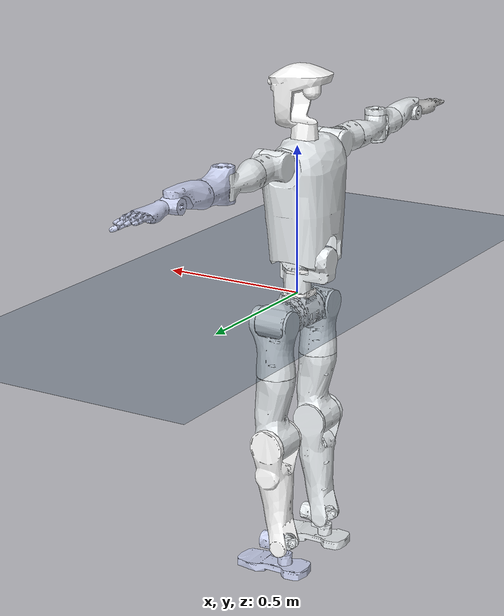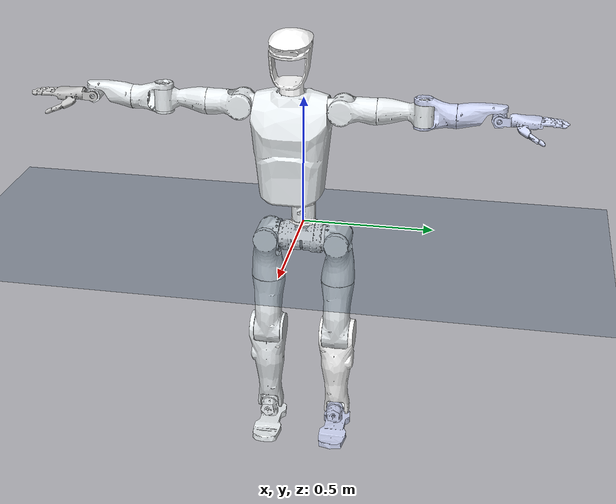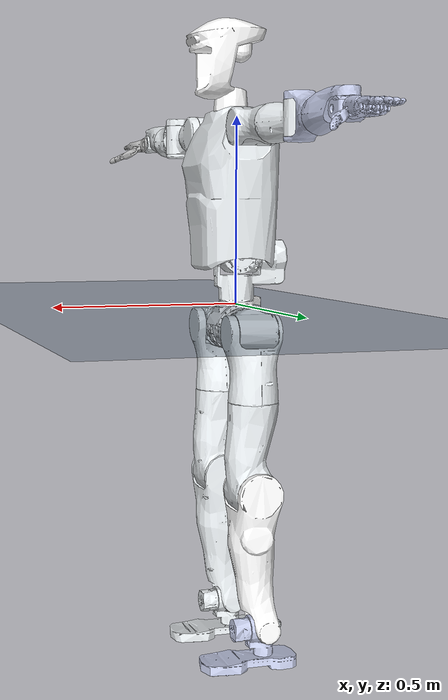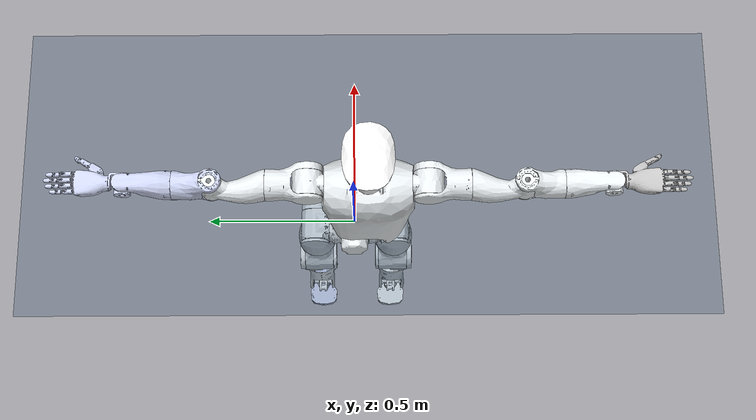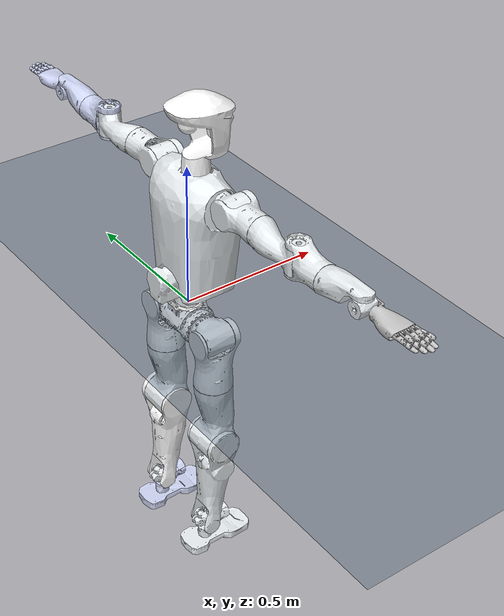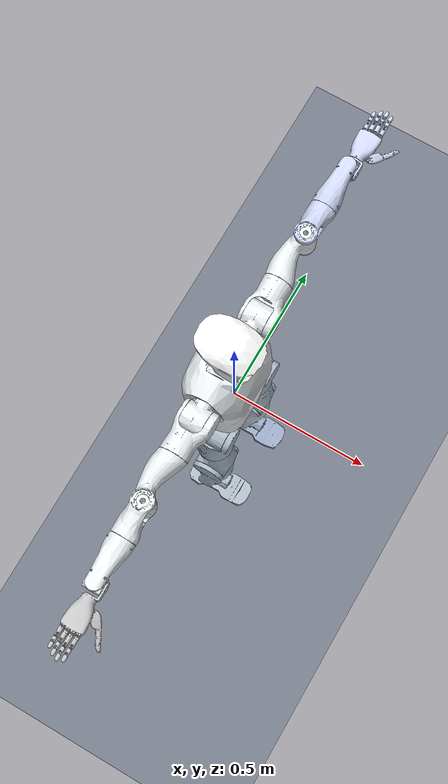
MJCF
<mujoco model="ti5robot">
  <compiler angle="radian" meshdir="./meshes/"/>
  <option timestep='0.002' iterations='50' solver='Newton' gravity='0 0 -9.81' integrator = 'RK4'/>

  <asset>
    <mesh name="BASE_S" file="BASE_S.STL"/>
    <mesh name="L_HIP_P_S" file="L_HIP_P_S.STL"/>
    <mesh name="L_HIP_R_S" file="L_HIP_R_S.STL"/>
    <mesh name="L_HIP_Y_S" file="L_HIP_Y_S.STL"/>
    <mesh name="L_KNEE_P_S" file="L_KNEE_P_S.STL"/>
    <mesh name="L_ANKLE_P_S" file="L_ANKLE_P_S.STL"/>
    <mesh name="L_ANKLE_R_S" file="L_ANKLE_R_S.STL"/>
    <mesh name="R_HIP_P_S" file="R_HIP_P_S.STL"/>
    <mesh name="R_HIP_R_S" file="R_HIP_R_S.STL"/>
    <mesh name="R_HIP_Y_S" file="R_HIP_Y_S.STL"/>
    <mesh name="R_KNEE_P_S" file="R_KNEE_P_S.STL"/>
    <mesh name="R_ANKLE_P_S" file="R_ANKLE_P_S.STL"/>
    <mesh name="R_ANKLE_R_S" file="R_ANKLE_R_S.STL"/>
    <mesh name="WAIST_Y_S" file="WAIST_Y_S.STL"/>
    <mesh name="WAIST_R_S" file="WAIST_R_S.STL"/>
    <mesh name="WAIST_P_S" file="WAIST_P_S.STL"/>
    <mesh name="L_SHOULDER_P_S" file="L_SHOULDER_P_S.STL"/>
    <mesh name="L_SHOULDER_R_S" file="L_SHOULDER_R_S.STL"/>
    <mesh name="L_SHOULDER_Y_S" file="L_SHOULDER_Y_S.STL"/>
    <mesh name="L_ELBOW_Y_S" file="L_ELBOW_Y_S.STL"/>
    <mesh name="L_WRIST_P_S" file="L_WRIST_P_S.STL"/>
    <mesh name="L_WRIST_Y_S" file="L_WRIST_Y_S.STL"/>
    <mesh name="L_WRIST_R_S" file="L_WRIST_R_S.STL"/>
    <mesh name="R_SHOULDER_P_S" file="R_SHOULDER_P_S.STL"/>
    <mesh name="R_SHOULDER_R_S" file="R_SHOULDER_R_S.STL"/>
    <mesh name="R_SHOULDER_Y_S" file="R_SHOULDER_Y_S.STL"/>
    <mesh name="R_ELBOW_Y_S" file="R_ELBOW_Y_S.STL"/>
    <mesh name="R_WRIST_P_S" file="R_WRIST_P_S.STL"/>
    <mesh name="R_WRIST_Y_S" file="R_WRIST_Y_S.STL"/>
    <mesh name="R_WRIST_R_S" file="R_WRIST_R_S.STL"/>
    <mesh name="NECK_Y_S" file="NECK_Y_S.STL"/>
  </asset>

  <default>
    <joint armature="0.1" damping="2" frictionloss="0.5"/>
  </default>

  <worldbody>
    <body name="base_link" pos="0 0 0" euler=" 0 0 0">
      <freejoint name="root"/>
      <inertial pos="-5.5e-05 1e-06 -0.047948" quat="1 0 0 0" mass="6.323164" diaginertia="0.0202645 0.0315849 0.0233534"/>
      <geom type="mesh" contype="0" conaffinity="0" group="1" density="0" rgba="1 1 1 1" mesh="BASE_S"/>
      <body name="L_HIP_P_S" pos="0 0.0945 -0.067">
        <inertial pos="0.012892 0.041367 1e-06" quat="0.627477 -0.000291411 -0.000475848 0.778635" mass="1.60224" diaginertia="0.00267399 0.00233509 0.00230796"/>
        <joint name="L_HIP_P" pos="0 0 0" axis="0 1 0" range="-1.2 0.3" actuatorfrcrange="-267 267"/>
        <geom type="mesh" contype="0" conaffinity="0" group="1" density="0" rgba="0.898039 0.917647 0.929412 1" mesh="L_HIP_P_S"/>
        <geom type="mesh" rgba="0.898039 0.917647 0.929412 1" mesh="L_HIP_P_S"/>
        <body name="L_HIP_R_S" pos="0.058 0.044 0">
          <inertial pos="-0.052494 0.001116 -0.135556" quat="0.718827 0.0662956 0.0901577 0.686123" mass="2.12318" diaginertia="0.00835541 0.00788314 0.00311014"/>
          <joint name="L_HIP_R" pos="0 0 0" axis="1 0 0" range="0 0.3" actuatorfrcrange="-63 63"/>
          <geom type="mesh" contype="0" conaffinity="0" group="1" density="0" rgba="0.898039 0.917647 0.929412 1" mesh="L_HIP_R_S"/>
          <geom type="mesh" rgba="0.898039 0.917647 0.929412 1" mesh="L_HIP_R_S"/>
          <body name="L_HIP_Y_S" pos="-0.058 0 -0.1972">
            <inertial pos="0.001701 0.007194 -0.198857" quat="0.661595 0.00419875 0.0230361 0.749496" mass="3.31319" diaginertia="0.0181625 0.0177362 0.00657469"/>
            <joint name="L_HIP_Y" pos="0 0 0" axis="0 0 -1" range="-0.3 0.3" actuatorfrcrange="-121 121"/>
            <geom type="mesh" contype="0" conaffinity="0" group="1" density="0" rgba="0.898039 0.917647 0.929412 1" mesh="L_HIP_Y_S"/>
            <geom type="mesh" rgba="0.898039 0.917647 0.929412 1" mesh="L_HIP_Y_S"/>
            <body name="L_KNEE_P_S" pos="0 0.057 -0.2228">
              <inertial pos="-0.003673 -0.046279 -0.131966" quat="0.996344 -0.0215571 0.0588606 -0.0580409" mass="2.87226" diaginertia="0.0309237 0.0291387 0.00644882"/>
              <joint name="L_KNEE_P" pos="0 0 0" axis="0 1 0" range="-0.2 1.2" actuatorfrcrange="-267 267"/>
              <geom type="mesh" contype="0" conaffinity="0" group="1" density="0" rgba="1 1 1 1" mesh="L_KNEE_P_S"/>
              <body name="L_ANKLE_P_S" pos="-0.032248 -0.058 -0.36859">
                <inertial pos="-0.006451 -0.006279 0.001685" quat="0.363576 0.67882 -0.304609 0.560562" mass="0.167704" diaginertia="0.000118849 8.01559e-05 7.10885e-05"/>
                <joint name="L_ANKLE_P" pos="0 0 0" axis="0 -1 0" range="-0.1 0.3" actuatorfrcrange="-63 63"/>
                <geom type="mesh" contype="0" conaffinity="0" group="1" density="0" rgba="0.898039 0.917647 0.929412 1" mesh="L_ANKLE_P_S"/>
                <geom type="mesh" rgba="0.898039 0.917647 0.929412 1" mesh="L_ANKLE_P_S"/>
                <body name="L_ANKLE_R_S" pos="0.023 0 0">
                  <inertial pos="0.019198 1e-06 -0.066833" quat="0.502366 0.497633 0.497632 0.502347" mass="2.58048" diaginertia="0.0148125 0.0131794 0.00501143"/>
                  <joint name="L_ANKLE_R" pos="0 0 0" axis="1 0 0" range="-0.2 0.2" actuatorfrcrange="-23 23"/>
                  <geom type="mesh" contype="0" conaffinity="0" group="1" density="0" rgba="0.792157 0.819608 0.933333 1" mesh="L_ANKLE_R_S"/>
                  <geom type="mesh" rgba="0.792157 0.819608 0.933333 1" mesh="L_ANKLE_R_S"/>
                </body>
              </body>
            </body>
          </body>
        </body>
      </body>

      <body name="R_HIP_P_S" pos="0 -0.0945 -0.067">
        <inertial pos="0.012246 -0.041162 1e-06" quat="0.77667 -0.00271576 -0.00217958 0.629898" mass="1.48677" diaginertia="0.00257663 0.00224167 0.00221078"/>
        <joint name="R_HIP_P" pos="0 0 0" axis="0 -1 0" range="-0.3 1.2" actuatorfrcrange="-267 267"/>
        <geom type="mesh" contype="0" conaffinity="0" group="1" density="0" rgba="0.898039 0.917647 0.929412 1" mesh="R_HIP_P_S"/>
        <geom type="mesh" rgba="0.898039 0.917647 0.929412 1" mesh="R_HIP_P_S"/>
        <body name="R_HIP_R_S" pos="0.058 -0.044 0">
          <inertial pos="-0.048002 -0.002026 -0.117145" quat="0.685206 0.0890741 0.0677358 0.719702" mass="1.16933" diaginertia="0.0067549 0.00628602 0.00252102"/>
          <joint name="R_HIP_R" pos="0 0 0" axis="-1 0 0" range="0.0 0.3" actuatorfrcrange="-63 63"/>
          <geom type="mesh" contype="0" conaffinity="0" group="1" density="0" rgba="0.898039 0.917647 0.929412 1" mesh="R_HIP_R_S"/>
          <geom type="mesh" rgba="0.898039 0.917647 0.929412 1" mesh="R_HIP_R_S"/>
          <body name="R_HIP_Y_S" pos="-0.058 0 -0.1972">
            <inertial pos="0.001876 -0.007356 -0.1964" quat="0.750285 0.0225833 0.00423983 0.660715" mass="3.00568" diaginertia="0.0174642 0.0170509 0.00608184"/>
            <joint name="R_HIP_Y" pos="0 0 0" axis="0 0 -1" range="-0.3 0.3" actuatorfrcrange="-121 121"/>
            <geom type="mesh" contype="0" conaffinity="0" group="1" density="0" rgba="0.898039 0.917647 0.929412 1" mesh="R_HIP_Y_S"/>
            <geom type="mesh" rgba="0.898039 0.917647 0.929412 1" mesh="R_HIP_Y_S"/>
            <body name="R_KNEE_P_S" pos="0 -0.057 -0.2228">
              <inertial pos="-0.001129 0.044916 -0.124637" quat="0.998194 0.0145088 0.0494387 0.0309004" mass="2.65342" diaginertia="0.0273573 0.025749 0.00621402"/>
              <joint name="R_KNEE_P" pos="0 0 0" axis="0 -1 0" range="-1.2 0.2" actuatorfrcrange="-267 267"/>
              <geom type="mesh" contype="0" conaffinity="0" group="1" density="0" rgba="0.898039 0.917647 0.929412 1" mesh="R_KNEE_P_S"/>
              <body name="R_ANKLE_P_S" pos="-0.032248 0.058 -0.36859">
                <inertial pos="-0.005285 0.0029 0.00138" quat="0.549092 0.54113 -0.453601 0.447127" mass="0.204699" diaginertia="0.000147897 0.000105132 7.78735e-05"/>
                <joint name="R_ANKLE_P" pos="0 0 0" axis="0 1 0" range="-0.3 0.1" actuatorfrcrange="-63 63"/>
                <geom type="mesh" contype="0" conaffinity="0" group="1" density="0" rgba="0.898039 0.917647 0.929412 1" mesh="R_ANKLE_P_S"/>
                <geom type="mesh" rgba="0.898039 0.917647 0.929412 1" mesh="R_ANKLE_P_S"/>
                <body name="R_ANKLE_R_S" pos="0.023 0 0">
                  <inertial pos="0.019038 -1e-06 -0.067145" quat="0.501909 0.498073 0.498073 0.50193" mass="2.57336" diaginertia="0.0147581 0.0131815 0.00495101"/>
                  <joint name="R_ANKLE_R" pos="0 0 0" axis="1 0 0" range="-0.2 0.2" actuatorfrcrange="-23 23"/>
                  <geom type="mesh" contype="0" conaffinity="0" group="1" density="0" rgba="0.898039 0.917647 0.929412 1" mesh="R_ANKLE_R_S"/>
                  <geom type="mesh" rgba="0.898039 0.917647 0.929412 1" mesh="R_ANKLE_R_S"/>
                </body>
              </body>
            </body>
          </body>
        </body>
      </body>

      <body name="WAIST_Y_S" pos="0 0 0">
        <inertial pos="-0.070117 0 0.109774" quat="0.32211 0.629462 0.6295 0.322107" mass="1.49971" diaginertia="0.00504279 0.00450544 0.0020536"/>
        <joint name="WAIST_Y" pos="0 0 0" axis="0 0 1" range="-3.14 3.14" actuatorfrcrange="-63 63"/>
        <geom type="mesh" contype="0" conaffinity="0" group="1" density="0" rgba="0.898039 0.917647 0.929412 1" mesh="WAIST_Y_S"/>
        <body name="WAIST_R_S" pos="-0.0495 0 0.127">
          <inertial pos="0.047638 0.006061 0" quat="0.480002 0.48295 0.516898 0.51882" mass="1.36489" diaginertia="0.00158718 0.00145367 0.00138281"/>
          <joint name="WAIST_R" pos="0 0 0" axis="1 0 0" range="-0.61 0.61" actuatorfrcrange="-63 63"/>
          <geom type="mesh" contype="0" conaffinity="0" group="1" density="0" rgba="0.898039 0.917647 0.929412 1" mesh="WAIST_R_S"/>
          <geom type="mesh" rgba="0.898039 0.917647 0.929412 1" mesh="WAIST_R_S"/>
          <body name="WAIST_P_S" pos="0.0495 0 0">
            <inertial pos="0.00211 -0.04656 0.245727" quat="0.999822 0.000676921 -0.0188413 -0.000726282" mass="11.0809" diaginertia="0.119572 0.0853823 0.0653947"/>
            <joint name="WAIST_P" pos="0 0 0" axis="0 1 0" range="-0.244 0.523" actuatorfrcrange="-63 63"/>
            <geom type="mesh" contype="0" conaffinity="0" group="1" density="0" rgba="0.898039 0.917647 0.929412 1" mesh="WAIST_P_S"/>
            <geom type="mesh" rgba="0.898039 0.917647 0.929412 1" mesh="WAIST_P_S"/>
            <body name="L_SHOULDER_P_S" pos="0.0005 0.0775 0.336">
              <inertial pos="0.011526 0.059678 0" quat="0.556289 0.436694 -0.556142 0.436517" mass="1.44488" diaginertia="0.001979 0.00197202 0.00157479"/>
              <joint name="L_SHOULDER_P" pos="0 0 0" axis="0 1 0" range="-3.14 3.14" actuatorfrcrange="-63 63"/>
              <geom type="mesh" contype="0" conaffinity="0" group="1" density="0" rgba="0.898039 0.917647 0.929412 1" mesh="L_SHOULDER_P_S"/>
              <geom type="mesh" rgba="0.898039 0.917647 0.929412 1" mesh="L_SHOULDER_P_S"/>
              <body name="L_SHOULDER_R_S" pos="0.054 0.066 0">
                <inertial pos="-0.050103 0.088587 0.000207" quat="0.445216 0.559564 -0.426623 0.553772" mass="1.01445" diaginertia="0.0026334 0.00242865 0.00105219"/>
                <joint name="L_SHOULDER_R" pos="0 0 0" axis="1 0 0" range="-1.57 1.57" actuatorfrcrange="-63 63"/>
                <geom type="mesh" contype="0" conaffinity="0" group="1" density="0" rgba="0.898039 0.917647 0.929412 1" mesh="L_SHOULDER_R_S"/>
                <geom type="mesh" rgba="0.898039 0.917647 0.929412 1" mesh="L_SHOULDER_R_S"/>
                <body name="L_SHOULDER_Y_S" pos="-0.054 0.1395 0">
                  <inertial pos="-0.002242 0.128183 0.013931" quat="0.688256 0.724315 0.00981676 -0.0396925" mass="1.09809" diaginertia="0.00436308 0.00416629 0.00101084"/>
                  <joint name="L_SHOULDER_Y" pos="0 0 0" axis="0 1 0" range="-3.14 3.14" actuatorfrcrange="-42 42"/>
                  <geom type="mesh" contype="0" conaffinity="0" group="1" density="0" rgba="0.898039 0.917647 0.929412 1" mesh="L_SHOULDER_Y_S"/>
                  <geom type="mesh" rgba="0.898039 0.917647 0.929412 1" mesh="L_SHOULDER_Y_S"/>
                  <body name="L_ELBOW_Y_S" pos="0 0.1605 0.051">
                    <inertial pos="-0.000772 0.079344 -0.047655" quat="0.779309 0.625873 -0.000692162 -0.0309908" mass="0.71509" diaginertia="0.00153346 0.001364 0.000810757"/>
                    <joint name="L_ELBOW_Y" pos="0 0 0" axis="0 0 1" range="-2.4 0.87" actuatorfrcrange="-42 42"/>
                    <geom type="mesh" contype="0" conaffinity="0" group="1" density="0" rgba="0.792157 0.819608 0.933333 1" mesh="L_ELBOW_Y_S"/>
                    <geom type="mesh" rgba="0.792157 0.819608 0.933333 1" mesh="L_ELBOW_Y_S"/>
                    <body name="L_WRIST_P_S" pos="0 0.1281 -0.051">
                      <inertial pos="-2.3e-05 0.049845 0.012821" quat="0.543246 0.839509 0.00940244 -0.00445009" mass="0.668794" diaginertia="0.00147551 0.0014373 0.00049438"/>
                      <joint name="L_WRIST_P" pos="0 0 0" axis="0 1 0" range="-3.14 3.14" actuatorfrcrange="-23 23"/>
                      <geom type="mesh" contype="0" conaffinity="0" group="1" density="0" rgba="0.792157 0.819608 0.933333 1" mesh="L_WRIST_P_S"/>
                      <geom type="mesh" rgba="0.792157 0.819608 0.933333 1" mesh="L_WRIST_P_S"/>
                      <body name="L_WRIST_Y_S" pos="9.0984e-05 0.14468 0.0425">
                        <inertial pos="-0.001864 0.000224 -0.040571" quat="0.505833 0.494425 0.494445 0.505175" mass="0.323944" diaginertia="0.000159343 0.000149794 0.000125793"/>
                        <joint name="L_WRIST_Y" pos="0 0 0" axis="0 0 1" range="-0.69 0.69" actuatorfrcrange="-8.3 8.3"/>
                        <geom type="mesh" contype="0" conaffinity="0" group="1" density="0" rgba="0.792157 0.819608 0.933333 1" mesh="L_WRIST_Y_S"/>
                        <geom type="mesh" rgba="0.792157 0.819608 0.933333 1" mesh="L_WRIST_Y_S"/>
                        <body name="L_WRIST_R_S" pos="0.030909 0.00022307 -0.0415">
                          <inertial pos="-0.011864 0.124644 -0.003841" quat="0.551322 0.61054 -0.374157 0.428126" mass="0.51894" diaginertia="0.00159414 0.00115561 0.000584714"/>
                          <joint name="L_WRIST_R" pos="0 0 0" axis="1 0 0" range="-2.35 0.348" actuatorfrcrange="-8.3 8.3"/>
                          <geom type="mesh" contype="0" conaffinity="0" group="1" density="0" rgba="0.792157 0.819608 0.933333 1" mesh="L_WRIST_R_S"/>
                          <geom type="mesh" rgba="0.792157 0.819608 0.933333 1" mesh="L_WRIST_R_S"/>
                        </body>
                      </body>
                    </body>
                  </body>
                </body>
              </body>
            </body>
            <body name="R_SHOULDER_P_S" pos="0.0005 -0.1705 0.336">
              <inertial pos="0.010619 -0.059179 0" quat="0.435974 0.556708 -0.435975 0.556713" mass="1.3392" diaginertia="0.00191588 0.00187624 0.00151805"/>
              <joint name="R_SHOULDER_P" pos="0 0 0" axis="0 1 0" range="-3.14 3.14" actuatorfrcrange="-63 63"/>
              <geom type="mesh" contype="0" conaffinity="0" group="1" density="0" rgba="0.898039 0.917647 0.929412 1" mesh="R_SHOULDER_P_S"/>
              <geom type="mesh" rgba="0.898039 0.917647 0.929412 1" mesh="R_SHOULDER_P_S"/>
              <body name="R_SHOULDER_R_S" pos="0.054 -0.066 0">
                <inertial pos="-0.046824 -0.072798 0.000381" quat="0.567151 0.436483 -0.560804 0.416319" mass="0.550943" diaginertia="0.00209653 0.00189866 0.00091488"/>
                <joint name="R_SHOULDER_R" pos="0 0 0" axis="1 0 0" range="-1.57 1.57" actuatorfrcrange="-63 63"/>
                <geom type="mesh" contype="0" conaffinity="0" group="1" density="0" rgba="0.898039 0.917647 0.929412 1" mesh="R_SHOULDER_R_S"/>
                <geom type="mesh" rgba="0.898039 0.917647 0.929412 1" mesh="R_SHOULDER_R_S"/>
                <body name="R_SHOULDER_Y_S" pos="-0.054 -0.1395 0">
                  <inertial pos="-0.003882 -0.10458 0.010336" quat="0.710567 0.700887 0.0543828 -0.0298987" mass="0.634542" diaginertia="0.00327904 0.00318608 0.000774573"/>
                  <joint name="R_SHOULDER_Y" pos="0 0 0" axis="0 1 0" range="-3.14 3.14" actuatorfrcrange="-42 42"/>
                  <geom type="mesh" contype="0" conaffinity="0" group="1" density="0" rgba="0.898039 0.917647 0.929412 1" mesh="R_SHOULDER_Y_S"/>
                  <geom type="mesh" rgba="0.898039 0.917647 0.929412 1" mesh="R_SHOULDER_Y_S"/>
                  <body name="R_ELBOW_Y_S" pos="0 -0.1605 0.051">
                    <inertial pos="-0.000784 -0.079077 -0.047592" quat="0.6257 0.779452 0.0308704 0.00074668" mass="0.702473" diaginertia="0.00152383 0.00135435 0.000804955"/>
                    <joint name="R_ELBOW_Y" pos="0 0 0" axis="0 0 1" range="-0.87 2.4" actuatorfrcrange="-42 42"/>
                    <geom type="mesh" contype="0" conaffinity="0" group="1" density="0" rgba="0.898039 0.917647 0.929412 1" mesh="R_ELBOW_Y_S"/>
                    <geom type="mesh" rgba="0.898039 0.917647 0.929412 1" mesh="R_ELBOW_Y_S"/>
                    <body name="R_WRIST_P_S" pos="0 -0.1281 -0.051">
                      <inertial pos="0 -0.051437 0.014735" quat="0.823159 0.567724 0.00462812 -0.00872187" mass="0.810141" diaginertia="0.00188843 0.00184639 0.000582647"/>
                      <joint name="R_WRIST_P" pos="0 0 0" axis="0 1 0" range="-3.14 3.14" actuatorfrcrange="-23 23"/>
                      <geom type="mesh" contype="0" conaffinity="0" group="1" density="0" rgba="0.898039 0.917647 0.929412 1" mesh="R_WRIST_P_S"/>
                      <geom type="mesh" rgba="0.898039 0.917647 0.929412 1" mesh="R_WRIST_P_S"/>
                      <body name="R_WRIST_Y_S" pos="9.0984e-05 -0.14468 0.0425">
                        <inertial pos="-0.000915 -0.000224 -0.039334" quat="0.515027 0.483651 0.4841 0.516213" mass="0.390534" diaginertia="0.000207261 0.000181487 0.000170596"/>
                        <joint name="R_WRIST_Y" pos="0 0 0" axis="0 0 1" range="-0.69 0.69" actuatorfrcrange="-8.3 8.3"/>
                        <geom type="mesh" contype="0" conaffinity="0" group="1" density="0" rgba="0.898039 0.917647 0.929412 1" mesh="R_WRIST_Y_S"/>
                        <geom type="mesh" rgba="0.898039 0.917647 0.929412 1" mesh="R_WRIST_Y_S"/>
                        <body name="R_WRIST_R_S" pos="0.030909 -0.00022307 -0.0415">
                          <inertial pos="-0.011723 -0.118518 -0.002744" quat="0.605668 0.561811 -0.420378 0.375255" mass="0.553221" diaginertia="0.00193101 0.00148624 0.000593935"/>
                          <joint name="R_WRIST_R" pos="0 0 0" axis="1 0 0" range="-0.348 2.35" actuatorfrcrange="-8.3 8.3"/>
                          <geom type="mesh" contype="0" conaffinity="0" group="1" density="0" rgba="0.752941 0.752941 0.752941 1" mesh="R_WRIST_R_S"/>
                          <geom type="mesh" rgba="0.752941 0.752941 0.752941 1" mesh="R_WRIST_R_S"/>
                        </body>
                      </body>
                    </body>
                  </body>
                </body>
              </body>
            </body>
            <body name="NECK_Y_S" pos="0.0005 -0.0465 0.365">
              <inertial pos="0.0261 0.00014 0.181967" quat="0.702893 0.00448363 0.0052392 0.711263" mass="2.50061" diaginertia="0.0170716 0.014942 0.00910057"/>
              <joint name="NECK_Y" pos="0 0 0" axis="0 0 1" range="-3.14 3.14" actuatorfrcrange="-8.3 8.3"/>
              <geom type="mesh" contype="0" conaffinity="0" group="1" density="0" rgba="1 1 1 1" mesh="NECK_Y_S"/>
              <geom type="mesh" rgba="1 1 1 1" mesh="NECK_Y_S"/>
            </body>
          </body>
        </body>
      </body>

    </body>
  </worldbody>

  <actuator>
    <position kp="300" kv="3" ctrllimited="true" ctrlrange="-10 10" joint="L_HIP_P" name="L_HIP_P"/>
    <position kp="300" kv="3" ctrllimited="true" ctrlrange="-10 10" joint="L_HIP_R" name="L_HIP_R"/>
    <position kp="300" kv="3" ctrllimited="true" ctrlrange="-10 10" joint="L_HIP_Y" name="L_HIP_Y"/>
    <position kp="300" kv="3" ctrllimited="true" ctrlrange="-10 10" joint="L_KNEE_P" name="L_KNEE_P"/>
    <position kp="300" kv="3" ctrllimited="true" ctrlrange="-10 10" joint="L_ANKLE_P" name="L_ANKLE_P"/>
    <position kp="300" kv="3" ctrllimited="true" ctrlrange="-10 10" joint="L_ANKLE_R" name="L_ANKLE_R"/>
    <position kp="300" kv="3" ctrllimited="true" ctrlrange="-10 10" joint="R_HIP_P" name="R_HIP_P"/>
    <position kp="300" kv="3" ctrllimited="true" ctrlrange="-10 10" joint="R_HIP_R" name="R_HIP_R"/>
    <position kp="300" kv="3" ctrllimited="true" ctrlrange="-10 10" joint="R_HIP_Y" name="R_HIP_Y"/>
    <position kp="300" kv="3" ctrllimited="true" ctrlrange="-10 10" joint="R_KNEE_P" name="R_KNEE_P"/>
    <position kp="300" kv="3" ctrllimited="true" ctrlrange="-10 10" joint="R_ANKLE_P" name="R_ANKLE_P"/>
    <position kp="300" kv="3" ctrllimited="true" ctrlrange="-10 10" joint="R_ANKLE_R" name="R_ANKLE_R"/>
    <position kp="300" kv="3" ctrllimited="true" ctrlrange="-10 10" joint="WAIST_Y" name="WAIST_Y"/>
    <position kp="300" kv="3" ctrllimited="true" ctrlrange="-10 10" joint="WAIST_R" name="WAIST_R"/>
    <position kp="300" kv="3" ctrllimited="true" ctrlrange="-10 10" joint="WAIST_P" name="WAIST_P"/>
    <position kp="300" kv="3" ctrllimited="true" ctrlrange="-10 10" joint="L_SHOULDER_P" name="L_SHOULDER_P"/>
    <position kp="300" kv="3" ctrllimited="true" ctrlrange="-10 10" joint="L_SHOULDER_R" name="L_SHOULDER_R"/>
    <position kp="300" kv="3" ctrllimited="true" ctrlrange="-10 10" joint="L_SHOULDER_Y" name="L_SHOULDER_Y"/>
    <position kp="300" kv="3" ctrllimited="true" ctrlrange="-10 10" joint="L_ELBOW_Y" name="L_ELBOW_Y"/>
    <position kp="300" kv="3" ctrllimited="true" ctrlrange="-10 10" joint="L_WRIST_P" name="L_WRIST_P"/>
    <position kp="300" kv="3" ctrllimited="true" ctrlrange="-10 10" joint="L_WRIST_Y" name="L_WRIST_Y"/>
    <position kp="300" kv="3" ctrllimited="true" ctrlrange="-10 10" joint="L_WRIST_R" name="L_WRIST_R"/>
    <position kp="300" kv="3" ctrllimited="true" ctrlrange="-10 10" joint="R_SHOULDER_P" name="R_SHOULDER_P"/>
    <position kp="300" kv="3" ctrllimited="true" ctrlrange="-10 10" joint="R_SHOULDER_R" name="R_SHOULDER_R"/>
    <position kp="300" kv="3" ctrllimited="true" ctrlrange="-10 10" joint="R_SHOULDER_Y" name="R_SHOULDER_Y"/>
    <position kp="300" kv="3" ctrllimited="true" ctrlrange="-10 10" joint="R_ELBOW_Y" name="R_ELBOW_Y"/>
    <position kp="300" kv="3" ctrllimited="true" ctrlrange="-10 10" joint="R_WRIST_P" name="R_WRIST_P"/>
    <position kp="300" kv="3" ctrllimited="true" ctrlrange="-10 10" joint="R_WRIST_Y" name="R_WRIST_Y"/>
    <position kp="300" kv="3" ctrllimited="true" ctrlrange="-10 10" joint="R_WRIST_R" name="R_WRIST_R"/>
    <position kp="300" kv="3" ctrllimited="true" ctrlrange="-10 10" joint="NECK_Y" name="NECK_Y"/>
  </actuator>

  <!-- setup scene -->
  <statistic center="1.0 0.7 1.0" extent="0.8"/>
  <visual>
    <headlight diffuse="0.6 0.6 0.6" ambient="0.1 0.1 0.1" specular="0.9 0.9 0.9"/>
    <rgba haze="0.15 0.25 0.35 1"/>
    <global azimuth="-140" elevation="-20"/>
  </visual>
  <asset>
    <texture type="skybox" builtin="flat" rgb1="0 0 0" rgb2="0 0 0" width="512" height="3072"/>
    <texture type="2d" name="groundplane" builtin="checker" mark="edge" rgb1="0.2 0.3 0.4" rgb2="0.1 0.2 0.3" markrgb="0.8 0.8 0.8" width="300" height="300"/>
    <material name="groundplane" texture="groundplane" texuniform="true" texrepeat="5 5" reflectance="0.2"/>
  </asset>
  <worldbody>
    <light pos="1 0 3.5" dir="0 0 -1" directional="true"/>
    <geom name="floor" size="0 0 0.05" type="plane" material="groundplane"/>
  </worldbody>

</mujoco>
